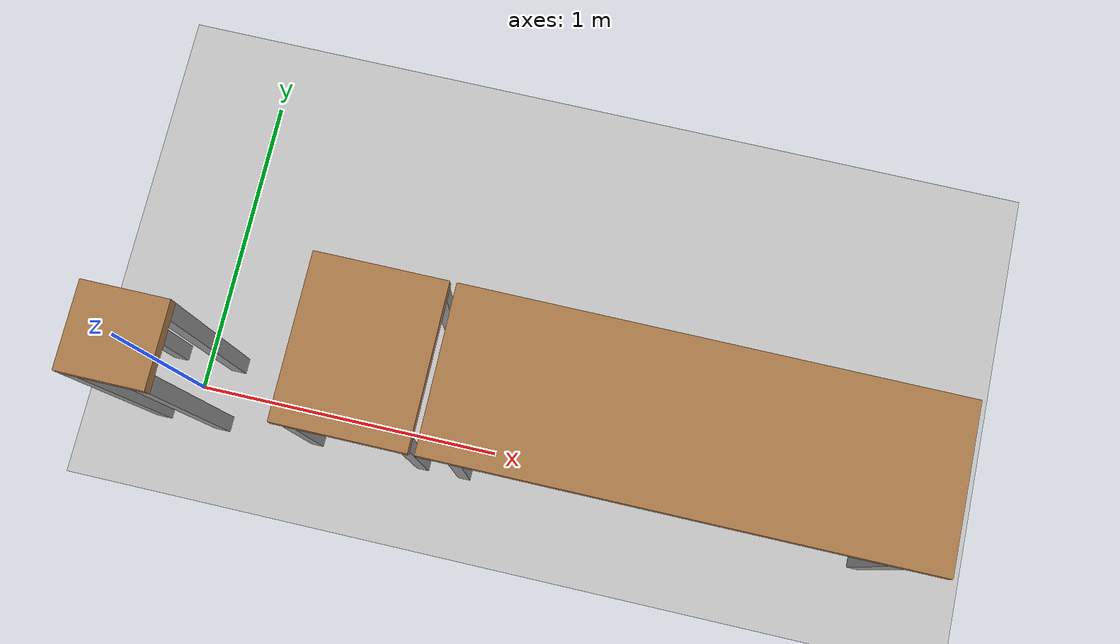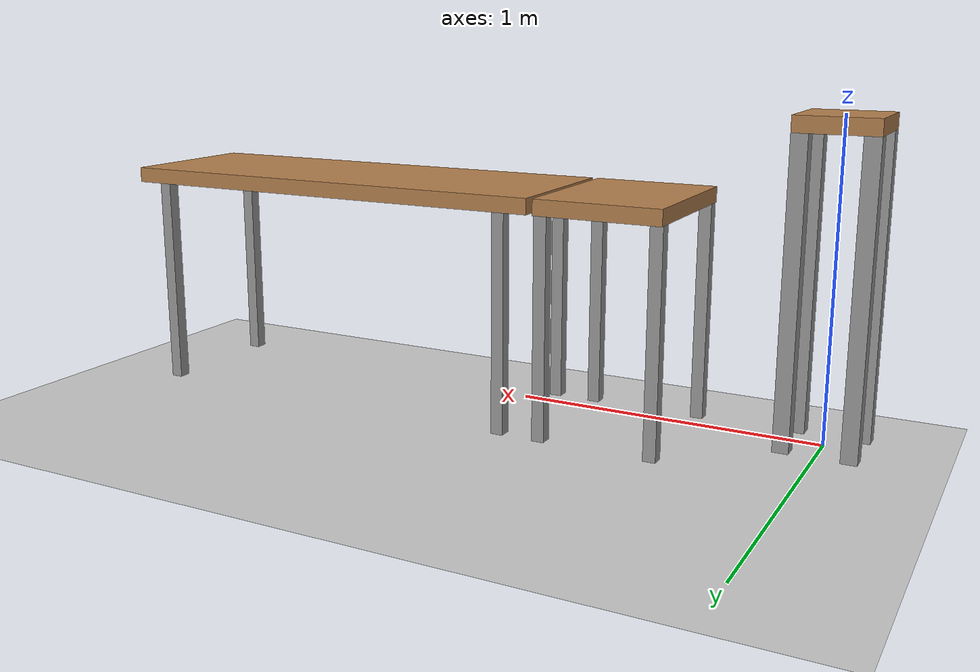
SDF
<sdf version='1.6'>
  <world name='default'>
    <light name='sun' type='directional'>
      <cast_shadows>1</cast_shadows>
      <pose frame=''>0 0 10 0 -0 0</pose>
      <diffuse>0.8 0.8 0.8 1</diffuse>
      <specular>0.2 0.2 0.2 1</specular>
      <attenuation>
        <range>1000</range>
        <constant>0.9</constant>
        <linear>0.01</linear>
        <quadratic>0.001</quadratic>
      </attenuation>
      <direction>-0.5 0.1 -0.9</direction>
    </light>

    <model name='ground_plane'>
      <static>1</static>
      <link name='link'>
        <collision name='collision'>
          <geometry>
            <plane>
              <normal>0 0 1</normal>
              <size>100 100</size>
            </plane>
          </geometry>
          <surface>
            <contact>
              <collide_bitmask>65535</collide_bitmask>
              <ode/>
            </contact>
            <friction>
              <ode>
                <mu>100</mu>
                <mu2>50</mu2>
              </ode>
              <torsional>
                <ode/>
              </torsional>
            </friction>
            <bounce/>
          </surface>
          <max_contacts>10</max_contacts>
        </collision>
        <visual name='visual'>
          <cast_shadows>0</cast_shadows>
          <geometry>
            <plane>
              <normal>0 0 1</normal>
              <size>100 100</size>
            </plane>
          </geometry>
          <material>
            <script>
              <uri>file://media/materials/scripts/gazebo.material</uri>
              <name>Gazebo/Grey</name>
            </script>
          </material>
        </visual>
        <self_collide>0</self_collide>
        <enable_wind>0</enable_wind>
        <kinematic>0</kinematic>
      </link>
    </model>

    <gravity>0 0 -9.8</gravity>
    <magnetic_field>6e-06 2.3e-05 -4.2e-05</magnetic_field>
    <atmosphere type='adiabatic'/>

    <physics name='default_physics' default='0' type='ode'>
      <max_step_size>0.001</max_step_size>
      <real_time_factor>1</real_time_factor>
      <real_time_update_rate>1000</real_time_update_rate>
    </physics>

    <scene>
      <ambient>0.4 0.4 0.4 1</ambient>
      <background>0.7 0.7 0.7 1</background>
      <shadows>1</shadows>
    </scene>

    <!-- Robot Platform Table -->
    <model name='robot_platform'>
      <static>1</static>
      <link name='platform_top'>
        <pose frame=''>0 0 0.975 0 0 0</pose>
        <collision name='collision'>
          <geometry>
            <box>
              <size>0.25 0.25 0.05</size>
            </box>
          </geometry>
          <surface>
            <friction>
              <ode>
                <mu>1</mu>
                <mu2>1</mu2>
              </ode>
              <torsional>
                <coefficient>1</coefficient>
                <ode/>
              </torsional>
            </friction>
            <bounce>
              <restitution_coefficient>0</restitution_coefficient>
            </bounce>
            <contact>
              <ode>
                <kp>1e+13</kp>
                <kd>1</kd>
                <max_vel>0.01</max_vel>
              </ode>
            </contact>
          </surface>
        </collision>
        <visual name='visual'>
          <geometry>
            <box>
              <size>0.25 0.25 0.05</size>
            </box>
          </geometry>
          <material>
            <lighting>1</lighting>
            <script>
              <uri>file://media/materials/scripts/gazebo.material</uri>
              <name>Gazebo/Wood</name>
            </script>
            <ambient>0.5 0.3 0.1 1</ambient>
            <diffuse>0.7 0.5 0.3 1</diffuse>
            <specular>0.01 0.01 0.01 1</specular>
          </material>
        </visual>
      </link>

      <link name='leg_1'>
        <pose frame=''>0.10 0.10 0.475 0 0 0</pose>
        <collision name='collision'>
          <geometry>
            <box><size>0.05 0.05 0.95</size></box>
          </geometry>
        </collision>
        <visual name='visual'>
          <geometry><box><size>0.05 0.05 0.95</size></box></geometry>
          <material><script><uri>file://media/materials/scripts/gazebo.material</uri><name>Gazebo/Grey</name></script></material>
        </visual>
      </link>
      <link name='leg_2'>
        <pose frame=''>-0.10 0.10 0.475 0 0 0</pose>
        <collision name='collision'>
          <geometry><box><size>0.05 0.05 0.95</size></box></geometry>
        </collision>
        <visual name='visual'>
          <geometry><box><size>0.05 0.05 0.95</size></box></geometry>
          <material><script><uri>file://media/materials/scripts/gazebo.material</uri><name>Gazebo/Grey</name></script></material>
        </visual>
      </link>
      <link name='leg_3'>
        <pose frame=''>0.10 -0.10 0.475 0 0 0</pose>
        <collision name='collision'>
          <geometry><box><size>0.05 0.05 0.95</size></box></geometry>
        </collision>
        <visual name='visual'>
          <geometry><box><size>0.05 0.05 0.95</size></box></geometry>
          <material><script><uri>file://media/materials/scripts/gazebo.material</uri><name>Gazebo/Grey</name></script></material>
        </visual>
      </link>
      <link name='leg_4'>
        <pose frame=''>-0.10 -0.10 0.475 0 0 0</pose>
        <collision name='collision'>
          <geometry><box><size>0.05 0.05 0.95</size></box></geometry>
        </collision>
        <visual name='visual'>
          <geometry><box><size>0.05 0.05 0.95</size></box></geometry>
          <material><script><uri>file://media/materials/scripts/gazebo.material</uri><name>Gazebo/Grey</name></script></material>
        </visual>
      </link>
    </model>

    <!-- Work Table -->
    <model name='work_table'>
      <static>1</static>
      <link name='table_top'>
        <pose frame=''>0.60 0.1363 0.725 0 0 0</pose>
        <collision name='collision'>
          <geometry>
            <box>
              <size>0.40 0.50 0.05</size>
            </box>
          </geometry>
          <surface>
            <friction>
              <ode>
                <mu>1</mu>
                <mu2>1</mu2>
              </ode>
              <torsional>
                <coefficient>1</coefficient>
                <ode/>
              </torsional>
            </friction>
            <bounce>
              <restitution_coefficient>0</restitution_coefficient>
            </bounce>
            <contact>
              <ode>
                <kp>1e+13</kp>
                <kd>1</kd>
                <max_vel>0.01</max_vel>
              </ode>
            </contact>
          </surface>
        </collision>
        <visual name='visual'>
          <geometry>
            <box>
              <size>0.40 0.50 0.05</size>
            </box>
          </geometry>
          <material>
            <lighting>1</lighting>
            <script>
              <uri>file://media/materials/scripts/gazebo.material</uri>
              <name>Gazebo/Wood</name>
            </script>
            <ambient>0.3 0.3 0.3 1</ambient>
            <diffuse>0.7 0.7 0.7 1</diffuse>
            <specular>0.01 0.01 0.01 1</specular>
          </material>
        </visual>
      </link>

      <link name='leg_front_left'>
        <pose frame=''>0.78 0.3563 0.35 0 0 0</pose>
        <collision name='collision'>
          <geometry><box><size>0.04 0.04 0.70</size></box></geometry>
        </collision>
        <visual name='visual'>
          <geometry><box><size>0.04 0.04 0.70</size></box></geometry>
          <material><script><uri>file://media/materials/scripts/gazebo.material</uri><name>Gazebo/Grey</name></script></material>
        </visual>
      </link>
      <link name='leg_front_right'>
        <pose frame=''>0.78 -0.0837 0.35 0 0 0</pose>
        <collision name='collision'>
          <geometry><box><size>0.04 0.04 0.70</size></box></geometry>
        </collision>
        <visual name='visual'>
          <geometry><box><size>0.04 0.04 0.70</size></box></geometry>
          <material><script><uri>file://media/materials/scripts/gazebo.material</uri><name>Gazebo/Grey</name></script></material>
        </visual>
      </link>
      <link name='leg_back_left'>
        <pose frame=''>0.42 0.3563 0.35 0 0 0</pose>
        <collision name='collision'>
          <geometry><box><size>0.04 0.04 0.70</size></box></geometry>
        </collision>
        <visual name='visual'>
          <geometry><box><size>0.04 0.04 0.70</size></box></geometry>
          <material><script><uri>file://media/materials/scripts/gazebo.material</uri><name>Gazebo/Grey</name></script></material>
        </visual>
      </link>
      <link name='leg_back_right'>
        <pose frame=''>0.42 -0.0837 0.35 0 0 0</pose>
        <collision name='collision'>
          <geometry><box><size>0.04 0.04 0.70</size></box></geometry>
        </collision>
        <visual name='visual'>
          <geometry><box><size>0.04 0.04 0.70</size></box></geometry>
          <material><script><uri>file://media/materials/scripts/gazebo.material</uri><name>Gazebo/Grey</name></script></material>
        </visual>
      </link>
    </model>

    <gui fullscreen='0'>
      <camera name='user_camera'>
        <pose frame=''>-0.640686 -1.26574 0.564981 0 0.19964 2.10819</pose>
        <view_controller>orbit</view_controller>
        <projection_type>perspective</projection_type>
      </camera>
    </gui>

    <!-- Landing Table -->
    <model name='landing_table'>
      <static>1</static>
      <link name='table_top'>
        <pose frame=''>1.57 0.1363 0.725 0 0 0</pose>
        <collision name='collision'>
          <geometry>
            <box>
              <size>1.5 0.50 0.05</size>
            </box>
          </geometry>
          <surface>
            <friction>
              <ode>
                <mu>1</mu>
                <mu2>1</mu2>
              </ode>
            </friction>
            <contact>
               <collide_bitmask>65535</collide_bitmask>
            </contact>
          </surface>
        </collision>
        <visual name='visual'>
          <geometry>
            <box>
              <size>1.5 0.50 0.05</size>
            </box>
          </geometry>
          <material>
            <script>
              <uri>file://media/materials/scripts/gazebo.material</uri>
              <name>Gazebo/Wood</name>
            </script>
          </material>
        </visual>
        <sensor name='landing_contact' type='contact'>
          <always_on>true</always_on>
          <update_rate>100</update_rate>
          <contact>
            <collision>collision</collision>
          </contact>
          <plugin name='landing_plugin' filename='libgazebo_ros_bumper.so'>
            <bumperTopicName>landing_table_contact</bumperTopicName>
            <frameName>world</frameName>
          </plugin>
        </sensor>
      </link>

      <!-- Legs -->
      <link name='leg_front_left'>
        <pose frame=''>2.22 0.3563 0.35 0 0 0</pose>
        <collision name='collision'>
          <geometry><box><size>0.04 0.04 0.70</size></box></geometry>
        </collision>
        <visual name='visual'>
          <geometry><box><size>0.04 0.04 0.70</size></box></geometry>
          <material><script><uri>file://media/materials/scripts/gazebo.material</uri><name>Gazebo/Grey</name></script></material>
        </visual>
      </link>
      <link name='leg_front_right'>
        <pose frame=''>2.22 -0.0837 0.35 0 0 0</pose>
        <collision name='collision'>
          <geometry><box><size>0.04 0.04 0.70</size></box></geometry>
        </collision>
        <visual name='visual'>
          <geometry><box><size>0.04 0.04 0.70</size></box></geometry>
          <material><script><uri>file://media/materials/scripts/gazebo.material</uri><name>Gazebo/Grey</name></script></material>
        </visual>
      </link>
      <link name='leg_back_left'>
        <pose frame=''>0.92 0.3563 0.35 0 0 0</pose>
        <collision name='collision'>
          <geometry><box><size>0.04 0.04 0.70</size></box></geometry>
        </collision>
        <visual name='visual'>
          <geometry><box><size>0.04 0.04 0.70</size></box></geometry>
          <material><script><uri>file://media/materials/scripts/gazebo.material</uri><name>Gazebo/Grey</name></script></material>
        </visual>
      </link>
      <link name='leg_back_right'>
        <pose frame=''>0.92 -0.0837 0.35 0 0 0</pose>
        <collision name='collision'>
          <geometry><box><size>0.04 0.04 0.70</size></box></geometry>
        </collision>
        <visual name='visual'>
          <geometry><box><size>0.04 0.04 0.70</size></box></geometry>
          <material><script><uri>file://media/materials/scripts/gazebo.material</uri><name>Gazebo/Grey</name></script></material>
        </visual>
      </link>
    </model>

  </world>
</sdf>
